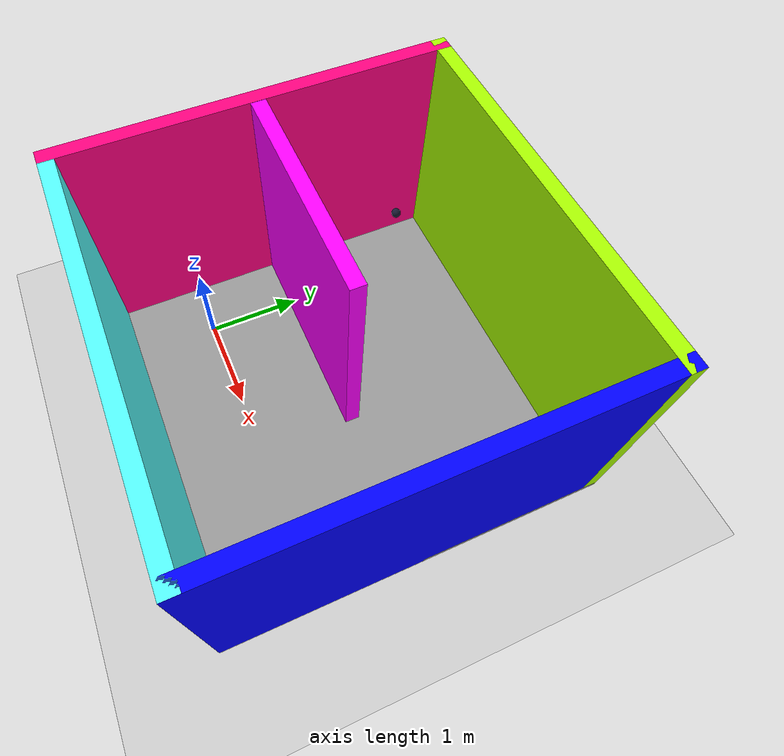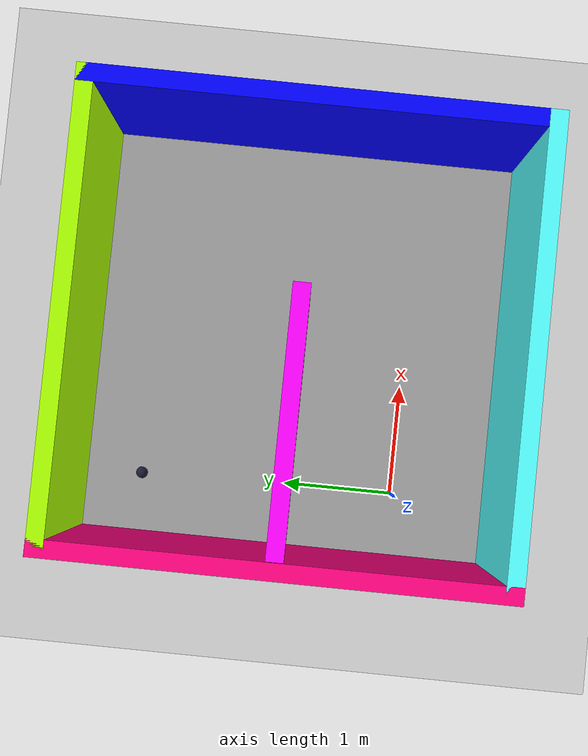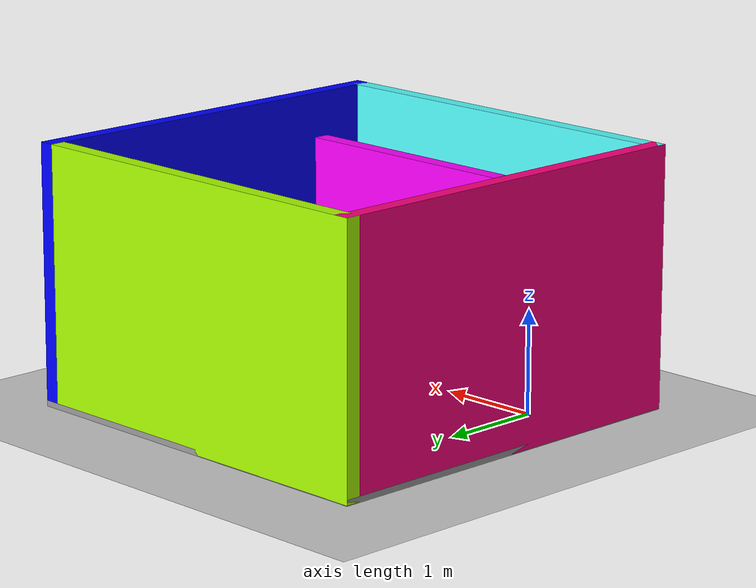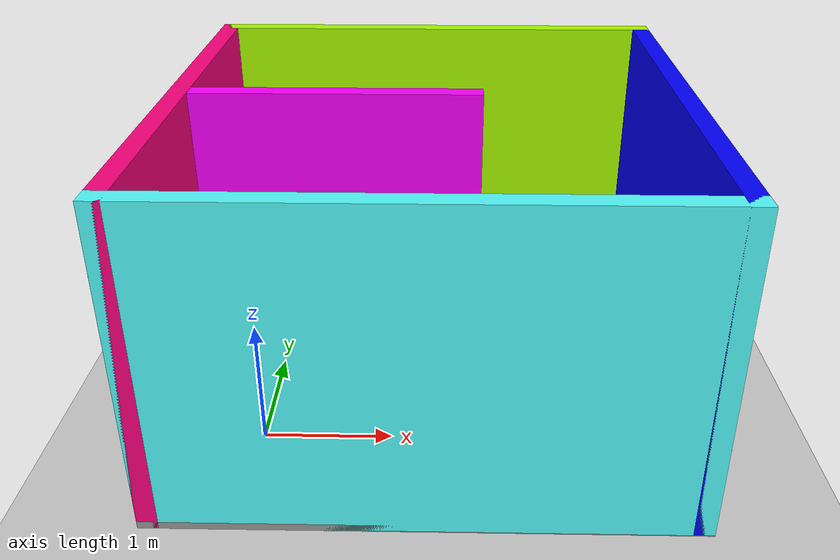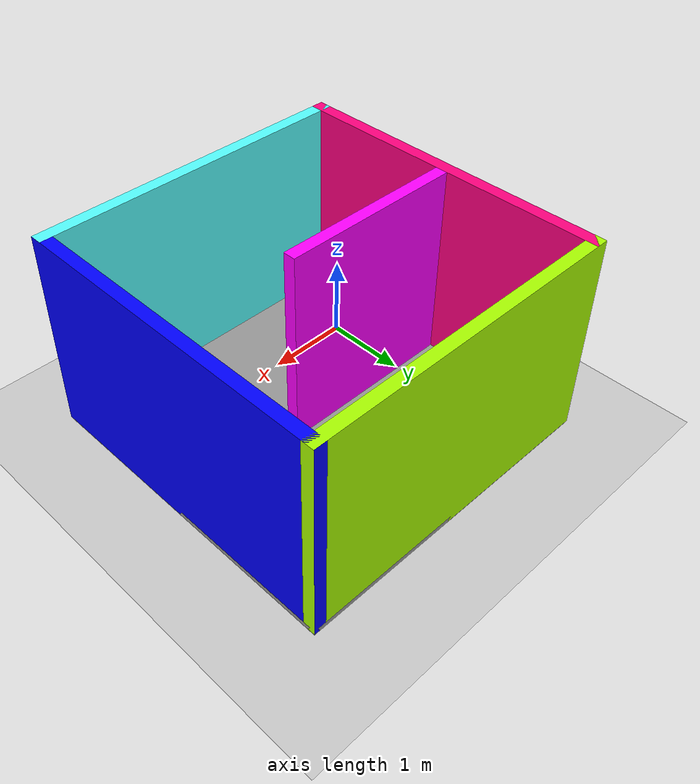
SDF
<sdf version='1.6'>
  <world name='default'>
    <light name='sun' type='directional'>
      <cast_shadows>1</cast_shadows>
      <pose frame=''>0 0 10 0 -0 0</pose>
      <diffuse>0.8 0.8 0.8 1</diffuse>
      <specular>0.2 0.2 0.2 1</specular>
      <attenuation>
        <range>1000</range>
        <constant>0.9</constant>
        <linear>0.01</linear>
        <quadratic>0.001</quadratic>
      </attenuation>
      <direction>-0.5 0.1 -0.9</direction>
    </light>
    <plugin name="ros_interface_plugin" filename="librotors_gazebo_ros_interface_plugin.so"/>
<model name="target">
      <pose>0 2.25 1 0 0 0</pose>
      <static>0</static>
      <link name="link">
      <gravity>0</gravity>
        <collision name="collision">
          <geometry>
          <sphere>
            <radius>0.051</radius>
          </sphere>
        </geometry>
          <surface>
            <contact>
              <collide_without_contact>1</collide_without_contact>
            </contact>
          </surface>
        </collision>
        <visual name="visual">
          <material>
            <ambient>0.1 0.1 0.1 1</ambient>
            <diffuse>0.1 0.1 0.2 1</diffuse>
            <specular>0 1 1 0</specular>
            <emissive>0 1 0 1</emissive>
          </material>
          <geometry>
          <sphere>
            <radius>0.051</radius>
          </sphere>
        </geometry>
        </visual>
      </link>
    </model>
    <model name='ground_plane'>
      <static>1</static>
      <link name='link'>
        <collision name='collision'>
          <geometry>
            <plane>
              <normal>0 0 1</normal>
              <size>100 100</size>
            </plane>
          </geometry>
          <surface>
            <friction>
              <ode>
                <mu>100</mu>
                <mu2>50</mu2>
              </ode>
              <torsional>
                <ode/>
              </torsional>
            </friction>
            <contact>
              <ode/>
            </contact>
            <bounce/>
          </surface>
          <max_contacts>10</max_contacts>
        </collision>
        <visual name='visual'>
          <cast_shadows>0</cast_shadows>
          <geometry>
            <plane>
              <normal>0 0 1</normal>
              <size>100 100</size>
            </plane>
          </geometry>
          <material>
            <script>
              <uri>file://media/materials/scripts/gazebo.material</uri>
              <name>Gazebo/Grey</name>
            </script>
          </material>
        </visual>
        <self_collide>0</self_collide>
        <enable_wind>0</enable_wind>
        <kinematic>0</kinematic>
      </link>
    </model>
    <gravity>0 0 -9.8</gravity>
    <magnetic_field>6e-06 2.3e-05 -4.2e-05</magnetic_field>
    <atmosphere type='adiabatic'/>
    <physics name='default_physics' default='0' type='ode'>
      <max_step_size>0.001</max_step_size>
      <real_time_factor>1</real_time_factor>
      <real_time_update_rate>1000</real_time_update_rate>
    </physics>
    <scene>
      <ambient>0.4 0.4 0.4 1</ambient>
      <background>0.7 0.7 0.7 1</background>
      <shadows>1</shadows>
    </scene>
    <wind/>
    <spherical_coordinates>
      <surface_model>EARTH_WGS84</surface_model>
      <latitude_deg>0</latitude_deg>
      <longitude_deg>0</longitude_deg>
      <elevation>0</elevation>
      <heading_deg>0</heading_deg>
    </spherical_coordinates>
    <model name='new_model'>
      <pose frame=''>1.28595 0.991365 0 0 -0 0</pose>
      <link name='Wall_15'>
        <collision name='Wall_15_Collision'>
          <geometry>
            <box>
              <size>4 0.15 2.5</size>
            </box>
          </geometry>
          <pose frame=''>0 0 1.25 0 -0 0</pose>
          <max_contacts>10</max_contacts>
          <surface>
            <contact>
              <ode/>
            </contact>
            <bounce/>
            <friction>
              <torsional>
                <ode/>
              </torsional>
              <ode/>
            </friction>
          </surface>
        </collision>
        <visual name='Wall_15_Visual'>
          <pose frame=''>0 0 1.25 0 -0 0</pose>
          <geometry>
            <box>
              <size>4 0.15 2.5</size>
            </box>
          </geometry>
          <material>
            <script>
              <uri>file://media/materials/scripts/gazebo.material</uri>
              <name>Gazebo/Grey</name>
            </script>
            <ambient>0.666667 1 0 1</ambient>
          </material>
          <meta>
            <layer>0</layer>
          </meta>
        </visual>
        <pose frame=''>-0 1.925 0 0 -0 3.14159</pose>
        <self_collide>0</self_collide>
        <enable_wind>0</enable_wind>
        <kinematic>0</kinematic>
      </link>
      <link name='Wall_16'>
        <collision name='Wall_16_Collision'>
          <geometry>
            <box>
              <size>4 0.15 2.5</size>
            </box>
          </geometry>
          <pose frame=''>0 0 1.25 0 -0 0</pose>
          <max_contacts>10</max_contacts>
          <surface>
            <contact>
              <ode/>
            </contact>
            <bounce/>
            <friction>
              <torsional>
                <ode/>
              </torsional>
              <ode/>
            </friction>
          </surface>
        </collision>
        <visual name='Wall_16_Visual'>
          <pose frame=''>0 0 1.25 0 -0 0</pose>
          <geometry>
            <box>
              <size>4 0.15 2.5</size>
            </box>
          </geometry>
          <material>
            <script>
              <uri>file://media/materials/scripts/gazebo.material</uri>
              <name>Gazebo/Grey</name>
            </script>
            <ambient>1 0 0.498039 1</ambient>
          </material>
          <meta>
            <layer>0</layer>
          </meta>
        </visual>
        <pose frame=''>-1.925 -0 0 0 -0 -1.5708</pose>
        <self_collide>0</self_collide>
        <enable_wind>0</enable_wind>
        <kinematic>0</kinematic>
      </link>
      <link name='Wall_17'>
        <collision name='Wall_17_Collision'>
          <geometry>
            <box>
              <size>4 0.15 2.5</size>
            </box>
          </geometry>
          <pose frame=''>0 0 1.25 0 -0 0</pose>
          <max_contacts>10</max_contacts>
          <surface>
            <contact>
              <ode/>
            </contact>
            <bounce/>
            <friction>
              <torsional>
                <ode/>
              </torsional>
              <ode/>
            </friction>
          </surface>
        </collision>
        <visual name='Wall_17_Visual'>
          <pose frame=''>0 0 1.25 0 -0 0</pose>
          <geometry>
            <box>
              <size>4 0.15 2.5</size>
            </box>
          </geometry>
          <material>
            <script>
              <uri>file://media/materials/scripts/gazebo.material</uri>
              <name>Gazebo/Grey</name>
            </script>
            <ambient>0.333333 1 1 1</ambient>
          </material>
          <meta>
            <layer>0</layer>
          </meta>
        </visual>
        <pose frame=''>-0 -1.925 0 0 -0 0</pose>
        <self_collide>0</self_collide>
        <enable_wind>0</enable_wind>
        <kinematic>0</kinematic>
      </link>
      <link name='Wall_18'>
        <collision name='Wall_18_Collision'>
          <geometry>
            <box>
              <size>4 0.15 2.5</size>
            </box>
          </geometry>
          <pose frame=''>0 0 1.25 0 -0 0</pose>
          <max_contacts>10</max_contacts>
          <surface>
            <contact>
              <ode/>
            </contact>
            <bounce/>
            <friction>
              <torsional>
                <ode/>
              </torsional>
              <ode/>
            </friction>
          </surface>
        </collision>
        <visual name='Wall_18_Visual'>
          <pose frame=''>0 0 1.25 0 -0 0</pose>
          <geometry>
            <box>
              <size>4 0.15 2.5</size>
            </box>
          </geometry>
          <material>
            <script>
              <uri>file://media/materials/scripts/gazebo.material</uri>
              <name>Gazebo/Grey</name>
            </script>
            <ambient>0 0 1 1</ambient>
          </material>
          <meta>
            <layer>0</layer>
          </meta>
        </visual>
        <pose frame=''>1.925 -0 0 0 -0 1.5708</pose>
        <self_collide>0</self_collide>
        <enable_wind>0</enable_wind>
        <kinematic>0</kinematic>
      </link>
      <link name='Wall_20'>
        <collision name='Wall_20_Collision'>
          <geometry>
            <box>
              <size>2.25 0.15 2.5</size>
            </box>
          </geometry>
          <pose frame=''>0 0 1.25 0 -0 0</pose>
          <max_contacts>10</max_contacts>
          <surface>
            <contact>
              <ode/>
            </contact>
            <bounce/>
            <friction>
              <torsional>
                <ode/>
              </torsional>
              <ode/>
            </friction>
          </surface>
        </collision>
        <visual name='Wall_20_Visual'>
          <pose frame=''>0 0 1.25 0 -0 0</pose>
          <geometry>
            <box>
              <size>2.25 0.15 2.5</size>
            </box>
          </geometry>
          <material>
            <script>
              <uri>file://media/materials/scripts/gazebo.material</uri>
              <name>Gazebo/Grey</name>
            </script>
            <ambient>1 0 1 1</ambient>
          </material>
          <meta>
            <layer>0</layer>
          </meta>
        </visual>
        <pose frame=''>-0.721735 0.008026 0 0 -0 3.14159</pose>
        <self_collide>0</self_collide>
        <enable_wind>0</enable_wind>
        <kinematic>0</kinematic>
      </link>
       <link name='link_0'>
      <pose frame=''>0 0 2.5 0 -0 0</pose>
      <inertial>
        <mass>1</mass>
        <inertia>
          <ixx>0.166667</ixx>
          <ixy>0</ixy>
          <ixz>0</ixz>
          <iyy>0.166667</iyy>
          <iyz>0</iyz>
          <izz>0.166667</izz>
        </inertia>
        <pose frame=''>0 0 0 0 -0 0</pose>
      </inertial>
      <self_collide>0</self_collide>
      <kinematic>0</kinematic>
      <visual name='ModelPreview_4::link_0::visual_1'>
        <pose frame=''>0 0 0 0 -0 0</pose>
        <geometry>
          <box>
            <size>4 4 0.1</size>
          </box>
        </geometry>
        <material>
          <lighting>1</lighting>
          <script>
            <uri>file://media/materials/scripts/gazebo.material</uri>
            <name>Gazebo/Grey</name>
          </script>
          <ambient>0.3 0.3 0.3 1</ambient>
          <diffuse>0.7 0.7 0.7 1</diffuse>
          <specular>0.01 0.01 0.01 1</specular>
          <emissive>0 0 0 1</emissive>
          <shader type='vertex'>
            <normal_map>__default__</normal_map>
          </shader>
        </material>
        <cast_shadows>1</cast_shadows>
        <transparency>1</transparency>
      </visual>
      <visual name='visual'>
        <pose frame=''>0 0 0 0 -0 0</pose>
        <geometry>
          <box>
            <size>4 4 0.1</size>
          </box>
        </geometry>
        <material>
          <lighting>1</lighting>
          <script>
            <uri>file://media/materials/scripts/gazebo.material</uri>
            <name>Gazebo/Grey</name>
          </script>
          <ambient>0.3 0.3 0.3 1</ambient>
          <diffuse>0.7 0.7 0.7 1</diffuse>
          <specular>0.01 0.01 0.01 1</specular>
          <emissive>0 0 0 1</emissive>
          <shader type='vertex'>
            <normal_map>__default__</normal_map>
          </shader>
        </material>
        <cast_shadows>1</cast_shadows>
        <transparency>1</transparency>
      </visual>
      <collision name='collision'>
        <laser_retro>0</laser_retro>
        <max_contacts>10</max_contacts>
        <pose frame=''>0 0 0 0 -0 0</pose>
        <geometry>
          <box>
            <size>4 4 0.1</size>
          </box>
        </geometry>
        <surface>
          <friction>
            <ode>
              <mu>1</mu>
              <mu2>1</mu2>
              <fdir1>0 0 0</fdir1>
              <slip1>0</slip1>
              <slip2>0</slip2>
            </ode>
            <torsional>
              <coefficient>1</coefficient>
              <patch_radius>0</patch_radius>
              <surface_radius>0</surface_radius>
              <use_patch_radius>1</use_patch_radius>
              <ode>
                <slip>0</slip>
              </ode>
            </torsional>
          </friction>
          <bounce>
            <restitution_coefficient>0</restitution_coefficient>
            <threshold>1e+06</threshold>
          </bounce>
          <contact>
            <collide_without_contact>0</collide_without_contact>
            <collide_without_contact_bitmask>1</collide_without_contact_bitmask>
            <collide_bitmask>1</collide_bitmask>
            <ode>
              <soft_cfm>0</soft_cfm>
              <soft_erp>0.2</soft_erp>
              <kp>1e+13</kp>
              <kd>1</kd>
              <max_vel>0.01</max_vel>
              <min_depth>0</min_depth>
            </ode>
            <bullet>
              <split_impulse>1</split_impulse>
              <split_impulse_penetration_threshold>-0.01</split_impulse_penetration_threshold>
              <soft_cfm>0</soft_cfm>
              <soft_erp>0.2</soft_erp>
              <kp>1e+13</kp>
              <kd>1</kd>
            </bullet>
          </contact>
        </surface>
      </collision>
    </link>-->
    <link name='link_0_clone'>
      <pose frame=''>0 0 0 0 -0 0</pose>
      <inertial>
        <mass>1</mass>
        <inertia>
          <ixx>0.166667</ixx>
          <ixy>0</ixy>
          <ixz>0</ixz>
          <iyy>0.166667</iyy>
          <iyz>0</iyz>
          <izz>0.166667</izz>
        </inertia>
        <pose frame=''>0 0 0 0 -0 0</pose>
      </inertial>
      <self_collide>0</self_collide>
      <kinematic>0</kinematic>
      <gravity>1</gravity>
      <visual name='ModelPreview_4::link_0_clone::visual_1'>
        <pose frame=''>0 0 0 0 -0 0</pose>
        <geometry>
          <box>
            <size>4 4 0.1</size>
          </box>
        </geometry>
        <material>
          <lighting>1</lighting>
          <script>
            <uri>file://media/materials/scripts/gazebo.material</uri>
            <name>Gazebo/Grey</name>
          </script>
          <ambient>1 1 1 1</ambient>
          <diffuse>1 1 1 1</diffuse>
          <specular>0.01 0.01 0.01 1</specular>
          <emissive>0 0 0 1</emissive>
          <shader type='vertex'>
            <normal_map>__default__</normal_map>
          </shader>
        </material>
        <cast_shadows>1</cast_shadows>
        <transparency>0</transparency>
      </visual>
      <collision name='collision'>
        <laser_retro>0</laser_retro>
        <max_contacts>10</max_contacts>
        <pose frame=''>0 0 0 0 -0 0</pose>
        <geometry>
          <box>
            <size>4 4 0.1</size>
          </box>
        </geometry>
        <surface>
          <friction>
            <ode>
              <mu>1</mu>
              <mu2>1</mu2>
              <fdir1>0 0 0</fdir1>
              <slip1>0</slip1>
              <slip2>0</slip2>
            </ode>
            <torsional>
              <coefficient>1</coefficient>
              <patch_radius>0</patch_radius>
              <surface_radius>0</surface_radius>
              <use_patch_radius>1</use_patch_radius>
              <ode>
                <slip>0</slip>
              </ode>
            </torsional>
          </friction>
          <bounce>
            <restitution_coefficient>0</restitution_coefficient>
            <threshold>1e+06</threshold>
          </bounce>
          <contact>
            <collide_without_contact>0</collide_without_contact>
            <collide_without_contact_bitmask>1</collide_without_contact_bitmask>
            <collide_bitmask>1</collide_bitmask>
            <ode>
              <soft_cfm>0</soft_cfm>
              <soft_erp>0.2</soft_erp>
              <kp>1e+13</kp>
              <kd>1</kd>
              <max_vel>0.01</max_vel>
              <min_depth>0</min_depth>
            </ode>
            <bullet>
              <split_impulse>1</split_impulse>
              <split_impulse_penetration_threshold>-0.01</split_impulse_penetration_threshold>
              <soft_cfm>0</soft_cfm>
              <soft_erp>0.2</soft_erp>
              <kp>1e+13</kp>
              <kd>1</kd>
            </bullet>
          </contact>
        </surface>
      </collision>
    </link>
      <static>1</static>
    </model>
    <gui fullscreen='0'>
      <camera name='user_camera'>
        <pose frame=''>0.844103 -0.330383 10.6974 0 1.4378 0.019997</pose>
        <view_controller>orbit</view_controller>
        <projection_type>perspective</projection_type>
      </camera>
    </gui>
  </world>
</sdf>
